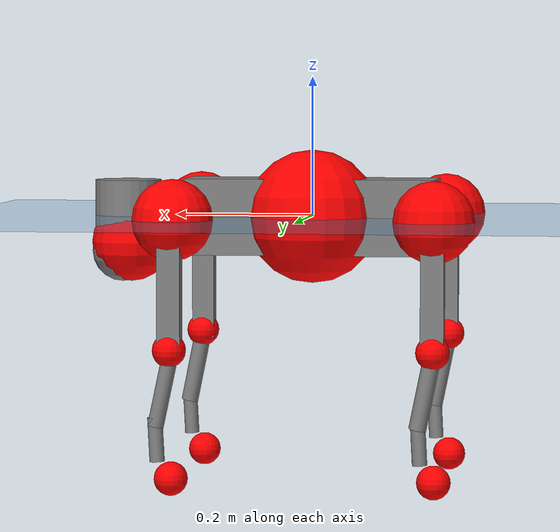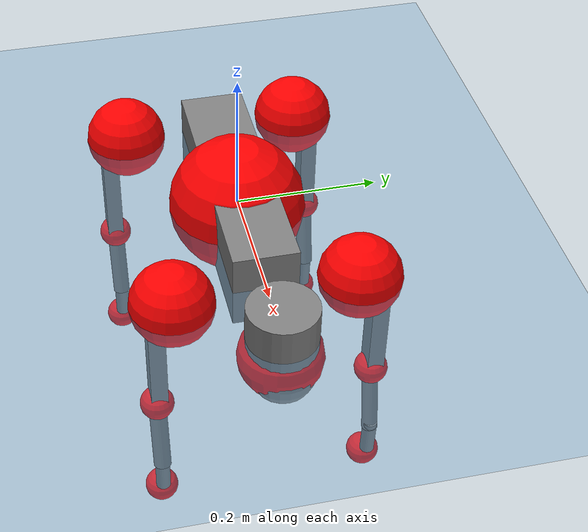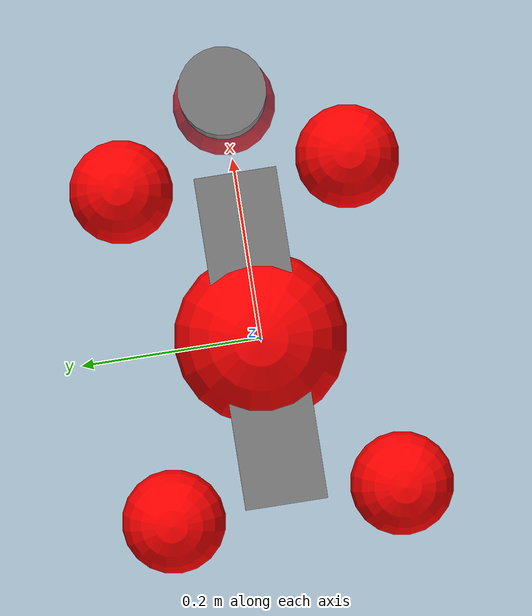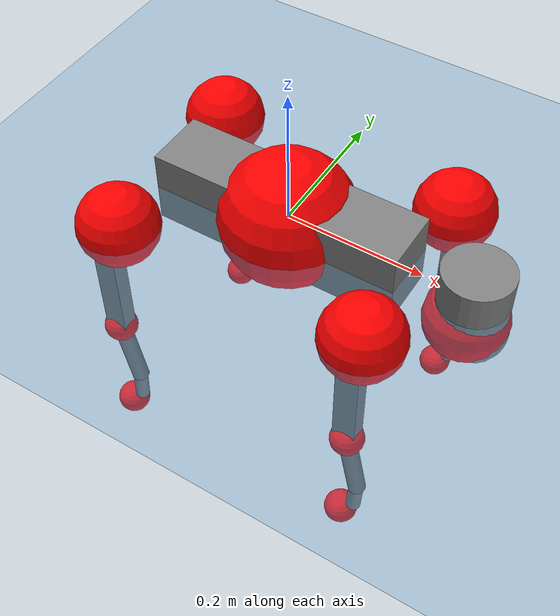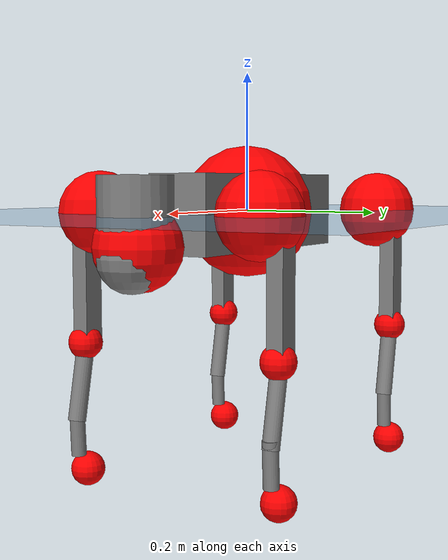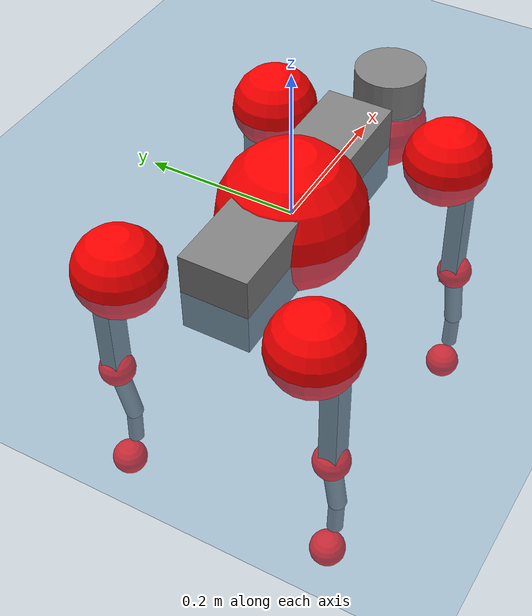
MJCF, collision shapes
<mujoco model="go2">
  <compiler angle="radian" assetdir="assets" balanceinertia="true" inertiafromgeom="false"/>

  <option timestep="0.005" density="1.2" viscosity="2e-05"/>

  <size nkey="1"/>

  <visual>
    <quality shadowsize="8192"/>
    <map shadowclip="0.5"/>
  </visual>

  <default>
    <default class="/">
      <geom contype="0" conaffinity="0" group="1" solref="-1000 -80"/>
      <site size="0.01 0.005 0.005" group="5"/>
      <general forcelimited="true" biastype="affine" gainprm="20" biasprm="0 -20 -0.5"/>
      <default class="go2">
        <joint armature="0.01" damping="0.01" frictionloss="0.2"/>
        <geom condim="1" margin="0.001"/>
        <default class="visual">
          <geom type="mesh" group="2"/>
        </default>
        <default class="collision">
          <geom group="3"/>
          <default class="foot">
            <geom size="0.022 0 0" condim="6" priority="1" friction="0.8 0.02 0.01" solimp="0.015 1 0.022"/>
          </default>
        </default>
        <default class="reward_collision_sphere">
          <geom group="5" rgba="1 0 0 1"/>
        </default>
      </default>
    </default>
  </default>

  <asset>
    <texture type="skybox" colorspace="auto" name="//unnamed_texture_0" builtin="gradient" rgb1="0.95 0.95 0.95" rgb2="0.95 0.95 0.95" width="100" height="600"/>
    <texture type="2d" colorspace="auto" name="texplane" builtin="checker" rgb1="0.345 0.575 0.748" rgb2="0.345 0.575 0.748" markrgb="1 1 1" width="512" height="512"/>
    <material name="MatPlane" class="/" texture="texplane" texuniform="true" texrepeat="2 2" specular="0.9"/>
    <material name="metal" class="/" rgba="0.9 0.95 0.95 1"/>
    <material name="black" class="/" rgba="0 0 0 1"/>
    <material name="white" class="/"/>
    <material name="gray" class="/" rgba="0.671705 0.692426 0.77427 1"/>
    <mesh name="base_0" class="/" file="base_0.obj"/>
    <mesh name="base_1" class="/" file="base_1.obj"/>
    <mesh name="base_2" class="/" file="base_2.obj"/>
    <mesh name="base_3" class="/" file="base_3.obj"/>
    <mesh name="base_4" class="/" file="base_4.obj"/>
    <mesh name="hip_0" class="/" file="hip_0.obj"/>
    <mesh name="hip_1" class="/" file="hip_1.obj"/>
    <mesh name="thigh_0" class="/" file="thigh_0.obj"/>
    <mesh name="thigh_1" class="/" file="thigh_1.obj"/>
    <mesh name="thigh_mirror_0" class="/" file="thigh_mirror_0.obj"/>
    <mesh name="thigh_mirror_1" class="/" file="thigh_mirror_1.obj"/>
    <mesh name="calf_0" class="/" file="calf_0.obj"/>
    <mesh name="calf_1" class="/" file="calf_1.obj"/>
    <mesh name="calf_mirror_0" class="/" file="calf_mirror_0.obj"/>
    <mesh name="calf_mirror_1" class="/" file="calf_mirror_1.obj"/>
    <mesh name="foot" class="/" file="foot.obj"/>
  </asset>

  <worldbody>
    <geom name="floor" class="/" size="100 100 0.125" type="plane" group="0" material="MatPlane"/>
    <light name="toplight_shadow" class="/" pos="0 0 5" dir="0.0990148 0.0990148 -0.990148" type="directional" ambient="0.04 0.04 0.04" diffuse="0.55 0.55 0.55" specular="0.12 0.12 0.12"/>
    <light name="toplight_fill" class="/" pos="0 0 5" dir="0.0990148 0.0990148 -0.990148" type="directional" castshadow="false" ambient="0.04 0.04 0.04" diffuse="0.3 0.3 0.3" specular="0.08 0.08 0.08"/>
    <body name="trunk" childclass="go2" pos="0.000433339 -0.000225174 -0.00108568" quat="1 -5.95077e-05 -2.93714e-05 8.68176e-05">
      <inertial pos="0.0182328 -0.00225228 -0.00520582" quat="0.00188314 0.712064 0.00202793 0.702109" mass="6.13408" diaginertia="0.08447 0.151535 0.0112665"/>
      <joint name="//unnamed_joint_0" type="free" armature="0" damping="0" frictionloss="0"/>
      <geom name="//unnamed_geom_1" class="visual" material="black" mesh="base_0"/>
      <geom name="//unnamed_geom_2" class="visual" material="black" mesh="base_1"/>
      <geom name="//unnamed_geom_3" class="visual" material="black" mesh="base_2"/>
      <geom name="//unnamed_geom_4" class="visual" material="white" mesh="base_3"/>
      <geom name="//unnamed_geom_5" class="visual" material="gray" mesh="base_4"/>
      <geom name="trunk_1" class="collision" size="0.181105 0.0450116 0.0548804" type="box"/>
      <geom name="trunk_2" class="collision" size="0.0481407 0.0433267" pos="0.270815 0 0.00852698" type="cylinder"/>
      <geom name="trunk_3" class="collision" size="0.0452523" pos="0.278416 0 -0.0511619"/>
      <geom name="//unnamed_geom_9" class="reward_collision_sphere" size="0.0962815"/>
      <geom name="//unnamed_geom_10" class="reward_collision_sphere" size="0.0577689" pos="0.266063 0 -0.0383714"/>
      <site name="imu" pos="-0.0372101 0.000502053 0.0470217" size="0.00962815"/>
      <camera name="track" pos="0 -2.17104 0" quat="0.707107 0.707107 0 0" mode="trackcom"/>
      <camera name="ego_camera" pos="0.296471 0 0.0383714" quat="-0.5 -0.5 0.5 0.5"/>
      <body name="FL_hip" pos="0.183036 0.0516129 0.000674537" quat="1 -0.000149219 -0.000113786 5.27991e-05">
        <inertial pos="-0.00280958 0.00260315 -0.000782372" quat="0.498628 0.498687 0.504382 0.498277" mass="0.584534" diaginertia="0.000660797 0.000896839 0.000212503"/>
        <joint name="FL_hip_joint" pos="0 0 0" axis="0.999926 -0.0120608 -0.00176927" stiffness="0.0057827" range="-1.05949 1.05211" armature="0.0108245" damping="0.00207225" frictionloss="0.197804"/>
        <geom name="//unnamed_geom_11" class="visual" material="metal" mesh="hip_0"/>
        <geom name="//unnamed_geom_12" class="visual" material="gray" mesh="hip_1"/>
        <geom name="//unnamed_geom_13" class="collision" size="0.0442895 0.0192563" pos="0 0.0868416 0" quat="0.707107 0.707107 0 0" type="cylinder"/>
        <geom name="//unnamed_geom_14" class="reward_collision_sphere" size="0.0577689" pos="0 0.0759864 0"/>
        <body name="FL_thigh" pos="-0.000524003 0.105242 0.00239682" quat="1 0.000168804 0.000328038 0.000659561">
          <inertial pos="-0.00440625 -0.0243308 -0.0255305" quat="0.831708 0.0812992 -0.0182949 0.548924" mass="1.04203" diaginertia="0.00450554 0.00887468 0.000401385"/>
          <joint name="FL_thigh_joint" pos="0 0 0" axis="0.00241775 0.999996 0.00121571" range="-1.54992 3.46939" armature="0.0094363" damping="0.0154104" frictionloss="0.171442"/>
          <geom name="//unnamed_geom_15" class="visual" material="metal" mesh="thigh_0"/>
          <geom name="//unnamed_geom_16" class="visual" material="gray" mesh="thigh_1"/>
          <geom name="//unnamed_geom_17" class="collision" size="0.10254 0.0117945 0.0163679" pos="0 0 -0.0908123" quat="0.707107 0 0.707107 0" type="box"/>
          <body name="FL_calf" pos="0.00117649 -0.00224843 -0.184497" quat="1 -0.000442679 0.000134236 -0.000755637">
            <inertial pos="0.0070467 -0.000449344 -0.118955" quat="0.713499 0.00422857 -0.00318052 0.700636" mass="0.214058" diaginertia="0.00115509 0.00219499 2.4181e-05"/>
            <joint name="FL_calf_joint" pos="0 0 0" axis="0.00569344 0.999983 0.00138321" stiffness="0.00152194" range="-2.7423 -0.852995" armature="0.0095705" damping="0" frictionloss="0.199204"/>
            <geom name="//unnamed_geom_18" class="visual" material="gray" mesh="calf_0"/>
            <geom name="//unnamed_geom_19" class="visual" material="black" mesh="calf_1"/>
            <geom name="FL_calf0" class="collision" size="0.0115538 0.0577689" pos="0.00760181 0 -0.0511619" quat="0.994493 0 -0.104807 0" type="cylinder"/>
            <geom name="//unnamed_geom_21" class="collision" size="0.010591 0.0312915" pos="0.0190045 0 -0.126199" quat="0.999688 0 0.0249974 0" type="cylinder"/>
            <geom name="//unnamed_geom_22" class="visual" pos="0 0 -0.181625" quat="1 0 0 0" material="black" mesh="foot"/>
            <geom name="FL_foot" class="foot" size="0.0180958" pos="-0.00190045 0 -0.181625"/>
            <geom name="//unnamed_geom_24" class="reward_collision_sphere" size="0.0240704"/>
            <geom name="//unnamed_geom_25" class="reward_collision_sphere" size="0.0240704" pos="-0.00190045 0 -0.181625"/>
            <site name="FL_foot" class="foot" pos="-0.00190045 0 -0.181625" size="0.00962815"/>
          </body>
        </body>
      </body>
      <body name="FR_hip" pos="0.183637 -0.0498331 0.00114989" quat="1 2.09402e-05 0.000162043 2.51069e-05">
        <inertial pos="-0.00283634 -0.0024015 0.000176475" quat="0.499098 0.505129 0.498664 0.497071" mass="0.617081" diaginertia="0.000694764 0.000907582 0.000217893"/>
        <joint name="FR_hip_joint" pos="0 0 0" axis="0.999987 0.00205903 -0.00462264" stiffness="0.00440602" range="-1.09549 1.04723" armature="0.0086018" damping="0.0195814" frictionloss="0.171262"/>
        <geom name="//unnamed_geom_26" class="visual" pos="0 2.02825e-09 8.69958e-08" quat="4.63268e-05 1 0 0" material="metal" mesh="hip_0"/>
        <geom name="//unnamed_geom_27" class="visual" pos="0 3.28803e-09 -2.15174e-07" quat="4.63268e-05 1 0 0" material="gray" mesh="hip_1"/>
        <geom name="//unnamed_geom_28" class="collision" size="0.0442895 0.0192563" pos="0 -0.0868416 0" quat="0.707107 0.707107 0 0" type="cylinder"/>
        <geom name="//unnamed_geom_29" class="reward_collision_sphere" size="0.0577689" pos="0 -0.0759864 0"/>
        <body name="FR_thigh" pos="0.000946705 -0.101066 -0.000479789" quat="1 -6.18497e-05 -0.00013566 -1.04505e-05">
          <inertial pos="-0.00327441 0.0242454 -0.028188" quat="0.553409 -0.0143637 0.0762202 0.829291" mass="0.977748" diaginertia="0.00454387 0.00870924 0.000386571"/>
          <joint name="FR_thigh_joint" pos="0 0 0" axis="0.00970058 -0.999953 0.000683916" stiffness="0.00274007" range="-3.43998 1.58852" armature="0.00982411" damping="0" frictionloss="0.217767"/>
          <geom name="//unnamed_geom_30" class="visual" material="metal" mesh="thigh_mirror_0"/>
          <geom name="//unnamed_geom_31" class="visual" material="gray" mesh="thigh_mirror_1"/>
          <geom name="//unnamed_geom_32" class="collision" size="0.10254 0.0117945 0.0163679" pos="0 0 -0.0908123" quat="0.707107 0 0.707107 0" type="box"/>
          <body name="FR_calf" pos="0.00206099 -0.0025378 -0.182233" quat="1 -0.000252276 7.84963e-06 -2.11093e-05">
            <inertial pos="0.00625381 0.000225095 -0.118421" quat="0.704285 -0.00493292 0.00250568 0.709895" mass="0.215771" diaginertia="0.00111581 0.00215445 2.40806e-05"/>
            <joint name="FR_calf_joint" pos="0 0 0" axis="-0.00224387 -0.999997 -0.00101689" range="0.829029 2.74015" armature="0.0101305" damping="0.0089093" frictionloss="0.168434"/>
            <geom name="//unnamed_geom_33" class="visual" material="gray" mesh="calf_mirror_0"/>
            <geom name="//unnamed_geom_34" class="visual" material="black" mesh="calf_mirror_1"/>
            <geom name="FR_calf0" class="collision" size="0.0125166 0.0577689" pos="0.00950227 0 -0.0511619" quat="0.995004 0 -0.0998334 0" type="cylinder"/>
            <geom name="//unnamed_geom_36" class="collision" size="0.010591 0.0312915" pos="0.0190045 0 -0.126199" quat="0.999688 0 0.0249974 0" type="cylinder"/>
            <geom name="//unnamed_geom_37" class="visual" pos="0 0 -0.181625" quat="1 0 0 0" material="black" mesh="foot"/>
            <geom name="FR_foot" class="foot" size="0.0202549" pos="-0.00190045 0 -0.181625"/>
            <geom name="//unnamed_geom_39" class="reward_collision_sphere" size="0.0240704"/>
            <geom name="//unnamed_geom_40" class="reward_collision_sphere" size="0.0240704" pos="-0.00190045 0 -0.181625"/>
            <site name="FR_foot" class="foot" pos="-0.00190045 0 -0.181625" size="0.00962815"/>
          </body>
        </body>
      </body>
      <body name="RL_hip" pos="-0.186308 0.0503806 -0.000298397" quat="1 3.3678e-05 5.80979e-05 0.000107763">
        <inertial pos="0.00451872 0.00484613 0.000762783" quat="0.504936 0.49651 0.497588 0.500923" mass="0.600481" diaginertia="0.000675745 0.000903412 0.000205145"/>
        <joint name="RL_hip_joint" pos="0 0 0" axis="-0.9999 -0.0138446 -0.00303361" stiffness="0.00503262" range="-1.06765 0.99405" armature="0.00843002" damping="0.00381421" frictionloss="0.188556"/>
        <geom name="//unnamed_geom_41" class="visual" pos="-8.49628e-10 0 -1.66547e-07" quat="4.63268e-05 0 1 0" material="metal" mesh="hip_0"/>
        <geom name="//unnamed_geom_42" class="visual" pos="-1.37735e-09 0 -1.47703e-07" quat="4.63268e-05 0 1 0" material="gray" mesh="hip_1"/>
        <geom name="//unnamed_geom_43" class="collision" size="0.0442895 0.0192563" pos="0 0.0868416 0" quat="0.707107 0.707107 0 0" type="cylinder"/>
        <geom name="//unnamed_geom_44" class="reward_collision_sphere" size="0.0577689" pos="0 0.0759864 0"/>
        <body name="RL_thigh" pos="-0.000670725 0.100371 0.000613461" quat="1 -1.0275e-05 2.37345e-05 -3.87584e-06">
          <inertial pos="-0.00345879 -0.0221137 -0.0278474" quat="0.829199 0.0838428 -0.0223074 0.552178" mass="1.02815" diaginertia="0.00462234 0.00876341 0.000391439"/>
          <joint name="RL_thigh_joint" pos="0 0 0" axis="0.00315807 0.999952 -0.00925656" stiffness="0.00653182" range="-0.525107 4.53806" armature="0.00970326" damping="0.00375771" frictionloss="0.183524"/>
          <geom name="//unnamed_geom_45" class="visual" material="metal" mesh="thigh_0"/>
          <geom name="//unnamed_geom_46" class="visual" material="gray" mesh="thigh_1"/>
          <geom name="//unnamed_geom_47" class="collision" size="0.10254 0.0117945 0.0163679" pos="0 0 -0.0908123" quat="0.707107 0 0.707107 0" type="box"/>
          <body name="RL_calf" pos="-0.000338987 -0.000525485 -0.180908" quat="1 -0.000150914 -0.000180257 0.000429546">
            <inertial pos="0.00586075 -0.000778851 -0.121007" quat="0.703025 0.00865671 -0.00272352 0.711107" mass="0.21473" diaginertia="0.00115829 0.00220093 2.30985e-05"/>
            <joint name="RL_calf_joint" pos="0 0 0" axis="-0.0042753 0.999956 0.00834595" stiffness="0.000552489" range="-2.72418 -0.837645" armature="0.00893545" damping="0.00382951" frictionloss="0.20072"/>
            <geom name="//unnamed_geom_48" class="visual" material="gray" mesh="calf_0"/>
            <geom name="//unnamed_geom_49" class="visual" material="black" mesh="calf_1"/>
            <geom name="RL_calf0" class="collision" size="0.0125166 0.0577689" pos="0.00950227 0 -0.0511619" quat="0.995004 0 -0.0998334 0" type="cylinder"/>
            <geom name="//unnamed_geom_51" class="collision" size="0.010591 0.0312915" pos="0.0190045 0 -0.126199" quat="0.999688 0 0.0249974 0" type="cylinder"/>
            <geom name="//unnamed_geom_52" class="visual" pos="0 0 -0.181625" quat="1 0 0 0" material="black" mesh="foot"/>
            <geom name="RL_foot" class="foot" size="0.0189006" pos="-0.00190045 0 -0.181625"/>
            <geom name="//unnamed_geom_54" class="reward_collision_sphere" size="0.0240704"/>
            <geom name="//unnamed_geom_55" class="reward_collision_sphere" size="0.0240704" pos="-0.00190045 0 -0.181625"/>
            <site name="RL_foot" class="foot" pos="-0.00190045 0 -0.181625" size="0.00962815"/>
          </body>
        </body>
      </body>
      <body name="RR_hip" pos="-0.183245 -0.0537082 -0.000215986" quat="1 0.000772997 -0.000284397 -0.000150678">
        <inertial pos="0.00267842 -0.00190693 0.00202048" quat="0.499756 0.499476 0.493899 0.506785" mass="0.606962" diaginertia="0.00068402 0.000900186 0.00021007"/>
        <joint name="RR_hip_joint" pos="0 0 0" axis="-0.999999 0.000954956 0.000595207" range="-1.08451 1.09797" armature="0.00950673" damping="0" frictionloss="0.1918"/>
        <geom name="//unnamed_geom_56" class="visual" pos="8.54312e-10 2.02825e-09 -2.53542e-07" quat="2.14617e-09 4.63268e-05 4.63268e-05 -1" material="metal" mesh="hip_0"/>
        <geom name="//unnamed_geom_57" class="visual" pos="1.36576e-09 3.28803e-09 6.74706e-08" quat="2.14617e-09 4.63268e-05 4.63268e-05 -1" material="gray" mesh="hip_1"/>
        <geom name="//unnamed_geom_58" class="collision" size="0.0442895 0.0192563" pos="0 -0.0868416 0" quat="0.707107 0.707107 0 0" type="cylinder"/>
        <geom name="//unnamed_geom_59" class="reward_collision_sphere" size="0.0577689" pos="0 -0.0759864 0"/>
        <body name="RR_thigh" pos="0.000317899 -0.104122 0.00140824" quat="1 -0.000155637 0.000240235 9.16442e-06">
          <inertial pos="-0.00227685 0.0250683 -0.0285109" quat="0.551802 -0.0196023 0.0848858 0.829413" mass="0.963136" diaginertia="0.0043457 0.00855498 0.000379271"/>
          <joint name="RR_thigh_joint" pos="0 0 0" axis="-0.0076413 -0.999871 -0.0141448" range="-4.52981 0.526119" armature="0.00998979" damping="0.0205707" frictionloss="0.190053"/>
          <geom name="//unnamed_geom_60" class="visual" material="metal" mesh="thigh_mirror_0"/>
          <geom name="//unnamed_geom_61" class="visual" material="gray" mesh="thigh_mirror_1"/>
          <geom name="//unnamed_geom_62" class="collision" size="0.10254 0.0117945 0.0163679" pos="0 0 -0.0908123" quat="0.707107 0 0.707107 0" type="box"/>
          <body name="RR_calf" pos="-0.001771 0.000626512 -0.183586" quat="1 0.000131595 0.000117714 6.33732e-05">
            <inertial pos="0.00656896 0.000791968 -0.120114" quat="0.698133 0.000872085 -0.00178389 0.715965" mass="0.217189" diaginertia="0.00115912 0.0022723 2.42323e-05"/>
            <joint name="RR_calf_joint" pos="0 0 0" axis="-0.00506048 -0.999987 0.000956643" stiffness="0.00543739" range="0.844186 2.74645" armature="0.00841029" damping="0.00458252" frictionloss="0.191671"/>
            <geom name="//unnamed_geom_63" class="visual" material="gray" mesh="calf_mirror_0"/>
            <geom name="//unnamed_geom_64" class="visual" material="black" mesh="calf_mirror_1"/>
            <geom name="RR_calf0" class="collision" size="0.0125166 0.0577689" pos="0.00950227 0 -0.0511619" quat="0.995004 0 -0.0998334 0" type="cylinder"/>
            <geom name="//unnamed_geom_66" class="collision" size="0.010591 0.0312915" pos="0.0190045 0 -0.126199" quat="0.999688 0 0.0249974 0" type="cylinder"/>
            <geom name="//unnamed_geom_67" class="visual" pos="0 0 -0.181625" quat="1 0 0 0" material="black" mesh="foot"/>
            <geom name="RR_foot" class="foot" size="0.0211993" pos="-0.00190045 0 -0.181625"/>
            <geom name="//unnamed_geom_69" class="reward_collision_sphere" size="0.0240704"/>
            <geom name="//unnamed_geom_70" class="reward_collision_sphere" size="0.0240704" pos="-0.00190045 0 -0.181625"/>
            <site name="RR_foot" class="foot" pos="-0.00190045 0 -0.181625" size="0.00962815"/>
          </body>
        </body>
      </body>
    </body>
  </worldbody>

  <contact>
    <pair class="/" geom1="floor" geom2="FL_foot" name="//unnamed_contact_0"/>
    <pair class="/" geom1="floor" geom2="FR_foot" name="//unnamed_contact_1"/>
    <pair class="/" geom1="floor" geom2="RL_foot" name="//unnamed_contact_2"/>
    <pair class="/" geom1="floor" geom2="RR_foot" name="//unnamed_contact_3"/>
  </contact>

  <actuator>
    <general name="FL_hip" class="/" joint="FL_hip_joint" forcerange="-23.0954 23.0954" gainprm="18.9106" biasprm="0 -18.9106 -0.495243"/>
    <general name="FL_thigh" class="/" joint="FL_thigh_joint" forcerange="-22.5687 22.5687" gainprm="18.9106" biasprm="0 -18.9106 -0.495243"/>
    <general name="FL_calf" class="/" joint="FL_calf_joint" forcerange="-45.1534 45.1534" gainprm="18.9106" biasprm="0 -18.9106 -0.495243"/>
    <general name="FR_hip" class="/" joint="FR_hip_joint" forcerange="-22.2877 22.2877" gainprm="18.9106" biasprm="0 -18.9106 -0.495243"/>
    <general name="FR_thigh" class="/" joint="FR_thigh_joint" forcerange="-22.4325 22.4325" gainprm="18.9106" biasprm="0 -18.9106 -0.495243"/>
    <general name="FR_calf" class="/" joint="FR_calf_joint" forcerange="-39.9967 39.9967" gainprm="18.9106" biasprm="0 -18.9106 -0.495243"/>
    <general name="RL_hip" class="/" joint="RL_hip_joint" forcerange="-22.7878 22.7878" gainprm="18.9106" biasprm="0 -18.9106 -0.495243"/>
    <general name="RL_thigh" class="/" joint="RL_thigh_joint" forcerange="-20.9774 20.9774" gainprm="18.9106" biasprm="0 -18.9106 -0.495243"/>
    <general name="RL_calf" class="/" joint="RL_calf_joint" forcerange="-45.1917 45.1917" gainprm="18.9106" biasprm="0 -18.9106 -0.495243"/>
    <general name="RR_hip" class="/" joint="RR_hip_joint" forcerange="-23.6517 23.6517" gainprm="18.9106" biasprm="0 -18.9106 -0.495243"/>
    <general name="RR_thigh" class="/" joint="RR_thigh_joint" forcerange="-20.6528 20.6528" gainprm="18.9106" biasprm="0 -18.9106 -0.495243"/>
    <general name="RR_calf" class="/" joint="RR_calf_joint" forcerange="-47.2503 47.2503" gainprm="18.9106" biasprm="0 -18.9106 -0.495243"/>
  </actuator>

  <sensor>
    <gyro site="imu" name="imu_angular_velocity"/>
    <velocimeter site="imu" name="imu_linear_velocity"/>
    <framelinvel objtype="site" objname="FL_foot" name="FL_foot_global_linear_velocity"/>
    <framelinvel objtype="site" objname="FR_foot" name="FR_foot_global_linear_velocity"/>
    <framelinvel objtype="site" objname="RL_foot" name="RL_foot_global_linear_velocity"/>
    <framelinvel objtype="site" objname="RR_foot" name="RR_foot_global_linear_velocity"/>
  </sensor>

  <keyframe>
    <key name="home" qpos="0 0 0.325 1 0 0 0 0.1 0.8 -1.5 -0.1 -0.8 1.5 -0.1 0.8 -1.5 0.1 -0.8 1.5"/>
  </keyframe>
</mujoco>
